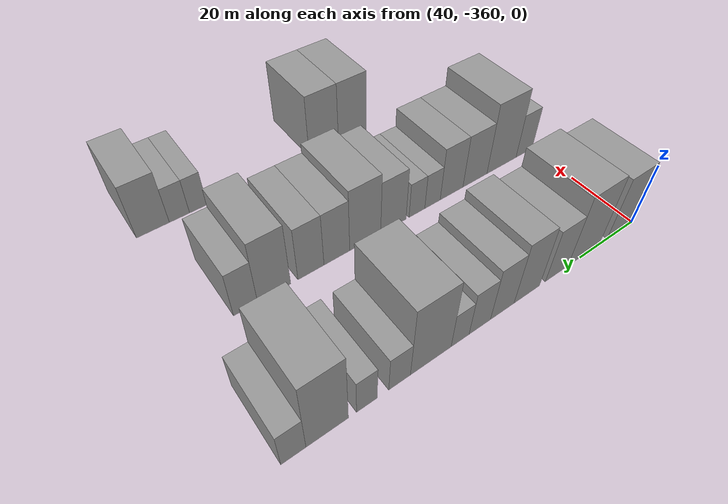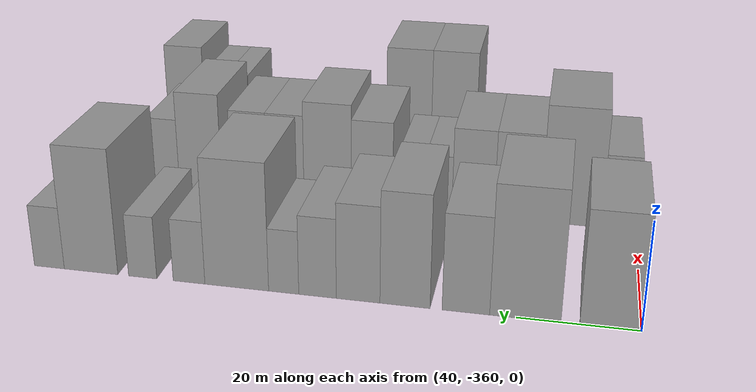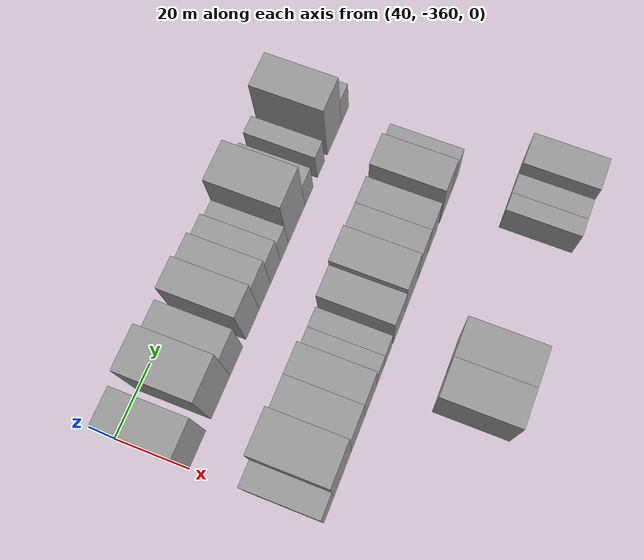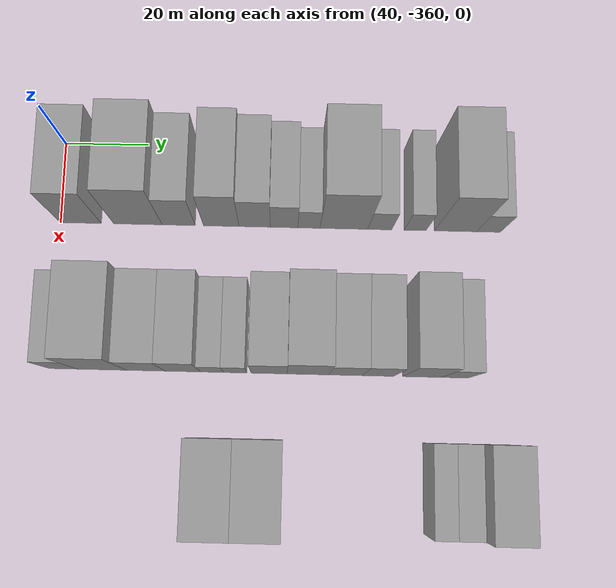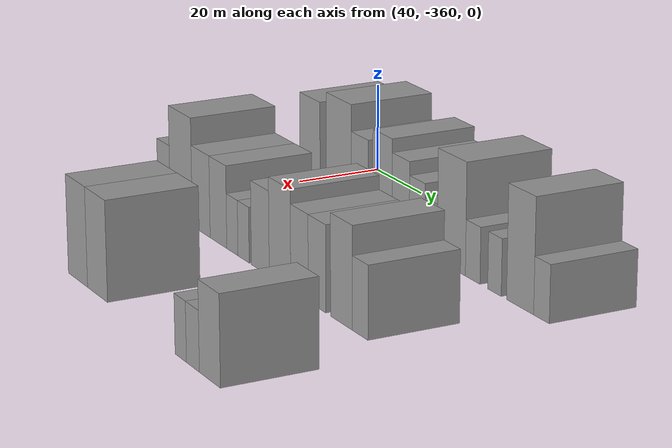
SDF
<sdf version="1.6">
 <world name="default">
  <model name="building_1">
   <static>1</static>
   <pose>50.0000 -355.1001 0 0.000000 0.000000 0.000000</pose>
   <link name="link">
    <pose>0 0 10.50 0 0 0</pose>
    <collision name="collision"><geometry><box><size>20.0000 9.7997 21.0000</size></box></geometry></collision>
    <visual name="visual">
     <cast_shadows>0</cast_shadows>
     <geometry><box><size>20.0000 9.7997 21.0000</size></box></geometry>
     <material>
      <script>
       <uri>model://grey_wall/materials/scripts</uri>
       <uri>model://grey_wall/materials/textures</uri>
       <name>vrc/grey_wall</name>
      </script>
     </material>
    </visual>
   </link>
  </model>
  <model name="building_2">
   <static>1</static>
   <pose>50.0000 -341.4045 0 0.000000 0.000000 0.000000</pose>
   <link name="link">
    <pose>0 0 12.00 0 0 0</pose>
    <collision name="collision"><geometry><box><size>20.0000 11.5914 24.0000</size></box></geometry></collision>
    <visual name="visual">
     <cast_shadows>0</cast_shadows>
     <geometry><box><size>20.0000 11.5914 24.0000</size></box></geometry>
     <material>
      <script>
       <uri>model://grey_wall/materials/scripts</uri>
       <uri>model://grey_wall/materials/textures</uri>
       <name>vrc/grey_wall</name>
      </script>
     </material>
    </visual>
   </link>
  </model>
  <model name="building_3">
   <static>1</static>
   <pose>50.0000 -331.6680 0 0.000000 0.000000 0.000000</pose>
   <link name="link">
    <pose>0 0 9.00 0 0 0</pose>
    <collision name="collision"><geometry><box><size>20.0000 7.8818 18.0000</size></box></geometry></collision>
    <visual name="visual">
     <cast_shadows>0</cast_shadows>
     <geometry><box><size>20.0000 7.8818 18.0000</size></box></geometry>
     <material>
      <script>
       <uri>model://grey_wall/materials/scripts</uri>
       <uri>model://grey_wall/materials/textures</uri>
       <name>vrc/grey_wall</name>
      </script>
     </material>
    </visual>
   </link>
  </model>
  <model name="building_4">
   <static>1</static>
   <pose>50.0000 -321.4947 0 0.000000 0.000000 0.000000</pose>
   <link name="link">
    <pose>0 0 10.50 0 0 0</pose>
    <collision name="collision"><geometry><box><size>20.0000 8.4648 21.0000</size></box></geometry></collision>
    <visual name="visual">
     <cast_shadows>0</cast_shadows>
     <geometry><box><size>20.0000 8.4648 21.0000</size></box></geometry>
     <material>
      <script>
       <uri>model://grey_wall/materials/scripts</uri>
       <uri>model://grey_wall/materials/textures</uri>
       <name>vrc/grey_wall</name>
      </script>
     </material>
    </visual>
   </link>
  </model>
  <model name="building_5">
   <static>1</static>
   <pose>50.0000 -313.5152 0 0.000000 0.000000 0.000000</pose>
   <link name="link">
    <pose>0 0 9.00 0 0 0</pose>
    <collision name="collision"><geometry><box><size>20.0000 7.4942 18.0000</size></box></geometry></collision>
    <visual name="visual">
     <cast_shadows>0</cast_shadows>
     <geometry><box><size>20.0000 7.4942 18.0000</size></box></geometry>
     <material>
      <script>
       <uri>model://grey_wall/materials/scripts</uri>
       <uri>model://grey_wall/materials/textures</uri>
       <name>vrc/grey_wall</name>
      </script>
     </material>
    </visual>
   </link>
  </model>
  <model name="building_6">
   <static>1</static>
   <pose>50.0000 -306.5093 0 0.000000 0.000000 0.000000</pose>
   <link name="link">
    <pose>0 0 7.50 0 0 0</pose>
    <collision name="collision"><geometry><box><size>20.0000 6.5176 15.0000</size></box></geometry></collision>
    <visual name="visual">
     <cast_shadows>0</cast_shadows>
     <geometry><box><size>20.0000 6.5176 15.0000</size></box></geometry>
     <material>
      <script>
       <uri>model://grey_wall/materials/scripts</uri>
       <uri>model://grey_wall/materials/textures</uri>
       <name>vrc/grey_wall</name>
      </script>
     </material>
    </visual>
   </link>
  </model>
  <model name="building_7">
   <static>1</static>
   <pose>50.0000 -300.6045 0 0.000000 0.000000 0.000000</pose>
   <link name="link">
    <pose>0 0 6.00 0 0 0</pose>
    <collision name="collision"><geometry><box><size>20.0000 5.2920 12.0000</size></box></geometry></collision>
    <visual name="visual">
     <cast_shadows>0</cast_shadows>
     <geometry><box><size>20.0000 5.2920 12.0000</size></box></geometry>
     <material>
      <script>
       <uri>model://grey_wall/materials/scripts</uri>
       <uri>model://grey_wall/materials/textures</uri>
       <name>vrc/grey_wall</name>
      </script>
     </material>
    </visual>
   </link>
  </model>
  <model name="building_8">
   <static>1</static>
   <pose>50.0000 -292.2646 0 0.000000 0.000000 0.000000</pose>
   <link name="link">
    <pose>0 0 12.00 0 0 0</pose>
    <collision name="collision"><geometry><box><size>20.0000 11.3878 24.0000</size></box></geometry></collision>
    <visual name="visual">
     <cast_shadows>0</cast_shadows>
     <geometry><box><size>20.0000 11.3878 24.0000</size></box></geometry>
     <material>
      <script>
       <uri>model://grey_wall/materials/scripts</uri>
       <uri>model://grey_wall/materials/textures</uri>
       <name>vrc/grey_wall</name>
      </script>
     </material>
    </visual>
   </link>
  </model>
  <model name="building_9">
   <static>1</static>
   <pose>50.0000 -283.6906 0 0.000000 0.000000 0.000000</pose>
   <link name="link">
    <pose>0 0 6.00 0 0 0</pose>
    <collision name="collision"><geometry><box><size>20.0000 5.7602 12.0000</size></box></geometry></collision>
    <visual name="visual">
     <cast_shadows>0</cast_shadows>
     <geometry><box><size>20.0000 5.7602 12.0000</size></box></geometry>
     <material>
      <script>
       <uri>model://grey_wall/materials/scripts</uri>
       <uri>model://grey_wall/materials/textures</uri>
       <name>vrc/grey_wall</name>
      </script>
     </material>
    </visual>
   </link>
  </model>
  <model name="building_10">
   <static>1</static>
   <pose>50.0000 -275.2085 0 0.000000 0.000000 0.000000</pose>
   <link name="link">
    <pose>0 0 6.00 0 0 0</pose>
    <collision name="collision"><geometry><box><size>20.0000 5.2040 12.0000</size></box></geometry></collision>
    <visual name="visual">
     <cast_shadows>0</cast_shadows>
     <geometry><box><size>20.0000 5.2040 12.0000</size></box></geometry>
     <material>
      <script>
       <uri>model://grey_wall/materials/scripts</uri>
       <uri>model://grey_wall/materials/textures</uri>
       <name>vrc/grey_wall</name>
      </script>
     </material>
    </visual>
   </link>
  </model>
  <model name="building_11">
   <static>1</static>
   <pose>50.0000 -265.5791 0 0.000000 0.000000 0.000000</pose>
   <link name="link">
    <pose>0 0 12.00 0 0 0</pose>
    <collision name="collision"><geometry><box><size>20.0000 10.0548 24.0000</size></box></geometry></collision>
    <visual name="visual">
     <cast_shadows>0</cast_shadows>
     <geometry><box><size>20.0000 10.0548 24.0000</size></box></geometry>
     <material>
      <script>
       <uri>model://grey_wall/materials/scripts</uri>
       <uri>model://grey_wall/materials/textures</uri>
       <name>vrc/grey_wall</name>
      </script>
     </material>
    </visual>
   </link>
  </model>
  <model name="building_12">
   <static>1</static>
   <pose>50.0000 -257.7121 0 0.000000 0.000000 0.000000</pose>
   <link name="link">
    <pose>0 0 6.00 0 0 0</pose>
    <collision name="collision"><geometry><box><size>20.0000 5.6793 12.0000</size></box></geometry></collision>
    <visual name="visual">
     <cast_shadows>0</cast_shadows>
     <geometry><box><size>20.0000 5.6793 12.0000</size></box></geometry>
     <material>
      <script>
       <uri>model://grey_wall/materials/scripts</uri>
       <uri>model://grey_wall/materials/textures</uri>
       <name>vrc/grey_wall</name>
      </script>
     </material>
    </visual>
   </link>
  </model>
  <model name="building_79">
   <static>1</static>
   <pose>85.0000 -356.7279 0 0.000000 0.000000 0.000000</pose>
   <link name="link">
    <pose>0 0 7.50 0 0 0</pose>
    <collision name="collision"><geometry><box><size>20.0000 6.5443 15.0000</size></box></geometry></collision>
    <visual name="visual">
     <cast_shadows>0</cast_shadows>
     <geometry><box><size>20.0000 6.5443 15.0000</size></box></geometry>
     <material>
      <script>
       <uri>model://grey_wall/materials/scripts</uri>
       <uri>model://grey_wall/materials/textures</uri>
       <name>vrc/grey_wall</name>
      </script>
     </material>
    </visual>
   </link>
  </model>
  <model name="building_80">
   <static>1</static>
   <pose>85.0000 -347.7599 0 0.000000 0.000000 0.000000</pose>
   <link name="link">
    <pose>0 0 12.00 0 0 0</pose>
    <collision name="collision"><geometry><box><size>20.0000 11.3915 24.0000</size></box></geometry></collision>
    <visual name="visual">
     <cast_shadows>0</cast_shadows>
     <geometry><box><size>20.0000 11.3915 24.0000</size></box></geometry>
     <material>
      <script>
       <uri>model://grey_wall/materials/scripts</uri>
       <uri>model://grey_wall/materials/textures</uri>
       <name>vrc/grey_wall</name>
      </script>
     </material>
    </visual>
   </link>
  </model>
  <model name="building_81">
   <static>1</static>
   <pose>85.0000 -337.5976 0 0.000000 0.000000 0.000000</pose>
   <link name="link">
    <pose>0 0 9.00 0 0 0</pose>
    <collision name="collision"><geometry><box><size>20.0000 8.9333 18.0000</size></box></geometry></collision>
    <visual name="visual">
     <cast_shadows>0</cast_shadows>
     <geometry><box><size>20.0000 8.9333 18.0000</size></box></geometry>
     <material>
      <script>
       <uri>model://grey_wall/materials/scripts</uri>
       <uri>model://grey_wall/materials/textures</uri>
       <name>vrc/grey_wall</name>
      </script>
     </material>
    </visual>
   </link>
  </model>
  <model name="building_82">
   <static>1</static>
   <pose>85.0000 -329.0489 0 0.000000 0.000000 0.000000</pose>
   <link name="link">
    <pose>0 0 9.00 0 0 0</pose>
    <collision name="collision"><geometry><box><size>20.0000 8.1641 18.0000</size></box></geometry></collision>
    <visual name="visual">
     <cast_shadows>0</cast_shadows>
     <geometry><box><size>20.0000 8.1641 18.0000</size></box></geometry>
     <material>
      <script>
       <uri>model://grey_wall/materials/scripts</uri>
       <uri>model://grey_wall/materials/textures</uri>
       <name>vrc/grey_wall</name>
      </script>
     </material>
    </visual>
   </link>
  </model>
  <model name="building_83">
   <static>1</static>
   <pose>85.0000 -322.2898 0 0.000000 0.000000 0.000000</pose>
   <link name="link">
    <pose>0 0 6.00 0 0 0</pose>
    <collision name="collision"><geometry><box><size>20.0000 5.3541 12.0000</size></box></geometry></collision>
    <visual name="visual">
     <cast_shadows>0</cast_shadows>
     <geometry><box><size>20.0000 5.3541 12.0000</size></box></geometry>
     <material>
      <script>
       <uri>model://grey_wall/materials/scripts</uri>
       <uri>model://grey_wall/materials/textures</uri>
       <name>vrc/grey_wall</name>
      </script>
     </material>
    </visual>
   </link>
  </model>
  <model name="building_84">
   <static>1</static>
   <pose>85.0000 -316.9596 0 0.000000 0.000000 0.000000</pose>
   <link name="link">
    <pose>0 0 6.00 0 0 0</pose>
    <collision name="collision"><geometry><box><size>20.0000 5.3062 12.0000</size></box></geometry></collision>
    <visual name="visual">
     <cast_shadows>0</cast_shadows>
     <geometry><box><size>20.0000 5.3062 12.0000</size></box></geometry>
     <material>
      <script>
       <uri>model://grey_wall/materials/scripts</uri>
       <uri>model://grey_wall/materials/textures</uri>
       <name>vrc/grey_wall</name>
      </script>
     </material>
    </visual>
   </link>
  </model>
  <model name="building_85">
   <static>1</static>
   <pose>85.0000 -309.1875 0 0.000000 0.000000 0.000000</pose>
   <link name="link">
    <pose>0 0 9.00 0 0 0</pose>
    <collision name="collision"><geometry><box><size>20.0000 8.2381 18.0000</size></box></geometry></collision>
    <visual name="visual">
     <cast_shadows>0</cast_shadows>
     <geometry><box><size>20.0000 8.2381 18.0000</size></box></geometry>
     <material>
      <script>
       <uri>model://grey_wall/materials/scripts</uri>
       <uri>model://grey_wall/materials/textures</uri>
       <name>vrc/grey_wall</name>
      </script>
     </material>
    </visual>
   </link>
  </model>
  <model name="building_86">
   <static>1</static>
   <pose>85.0000 -300.2663 0 0.000000 0.000000 0.000000</pose>
   <link name="link">
    <pose>0 0 10.50 0 0 0</pose>
    <collision name="collision"><geometry><box><size>20.0000 9.6042 21.0000</size></box></geometry></collision>
    <visual name="visual">
     <cast_shadows>0</cast_shadows>
     <geometry><box><size>20.0000 9.6042 21.0000</size></box></geometry>
     <material>
      <script>
       <uri>model://grey_wall/materials/scripts</uri>
       <uri>model://grey_wall/materials/textures</uri>
       <name>vrc/grey_wall</name>
      </script>
     </material>
    </visual>
   </link>
  </model>
  <model name="building_87">
   <static>1</static>
   <pose>85.0000 -291.6504 0 0.000000 0.000000 0.000000</pose>
   <link name="link">
    <pose>0 0 9.00 0 0 0</pose>
    <collision name="collision"><geometry><box><size>20.0000 7.6277 18.0000</size></box></geometry></collision>
    <visual name="visual">
     <cast_shadows>0</cast_shadows>
     <geometry><box><size>20.0000 7.6277 18.0000</size></box></geometry>
     <material>
      <script>
       <uri>model://grey_wall/materials/scripts</uri>
       <uri>model://grey_wall/materials/textures</uri>
       <name>vrc/grey_wall</name>
      </script>
     </material>
    </visual>
   </link>
  </model>
  <model name="building_88">
   <static>1</static>
   <pose>85.0000 -284.1190 0 0.000000 0.000000 0.000000</pose>
   <link name="link">
    <pose>0 0 9.00 0 0 0</pose>
    <collision name="collision"><geometry><box><size>20.0000 7.4351 18.0000</size></box></geometry></collision>
    <visual name="visual">
     <cast_shadows>0</cast_shadows>
     <geometry><box><size>20.0000 7.4351 18.0000</size></box></geometry>
     <material>
      <script>
       <uri>model://grey_wall/materials/scripts</uri>
       <uri>model://grey_wall/materials/textures</uri>
       <name>vrc/grey_wall</name>
      </script>
     </material>
    </visual>
   </link>
  </model>
  <model name="building_89">
   <static>1</static>
   <pose>85.0000 -273.9315 0 0.000000 0.000000 0.000000</pose>
   <link name="link">
    <pose>0 0 10.50 0 0 0</pose>
    <collision name="collision"><geometry><box><size>20.0000 8.9399 21.0000</size></box></geometry></collision>
    <visual name="visual">
     <cast_shadows>0</cast_shadows>
     <geometry><box><size>20.0000 8.9399 21.0000</size></box></geometry>
     <material>
      <script>
       <uri>model://grey_wall/materials/scripts</uri>
       <uri>model://grey_wall/materials/textures</uri>
       <name>vrc/grey_wall</name>
      </script>
     </material>
    </visual>
   </link>
  </model>
  <model name="building_90">
   <static>1</static>
   <pose>85.0000 -266.3416 0 0.000000 0.000000 0.000000</pose>
   <link name="link">
    <pose>0 0 7.50 0 0 0</pose>
    <collision name="collision"><geometry><box><size>20.0000 6.2399 15.0000</size></box></geometry></collision>
    <visual name="visual">
     <cast_shadows>0</cast_shadows>
     <geometry><box><size>20.0000 6.2399 15.0000</size></box></geometry>
     <material>
      <script>
       <uri>model://grey_wall/materials/scripts</uri>
       <uri>model://grey_wall/materials/textures</uri>
       <name>vrc/grey_wall</name>
      </script>
     </material>
    </visual>
   </link>
  </model>
  <model name="building_157">
   <static>1</static>
   <pose>120.0000 -320.9892 0 0.000000 0.000000 0.000000</pose>
   <link name="link">
    <pose>0 0 10.50 0 0 0</pose>
    <collision name="collision"><geometry><box><size>20.0000 10.0072 21.0000</size></box></geometry></collision>
    <visual name="visual">
     <cast_shadows>0</cast_shadows>
     <geometry><box><size>20.0000 10.0072 21.0000</size></box></geometry>
     <material>
      <script>
       <uri>model://grey_wall/materials/scripts</uri>
       <uri>model://grey_wall/materials/textures</uri>
       <name>vrc/grey_wall</name>
      </script>
     </material>
    </visual>
   </link>
  </model>
  <model name="building_158">
   <static>1</static>
   <pose>120.0000 -310.9097 0 0.000000 0.000000 0.000000</pose>
   <link name="link">
    <pose>0 0 10.50 0 0 0</pose>
    <collision name="collision"><geometry><box><size>20.0000 10.1517 21.0000</size></box></geometry></collision>
    <visual name="visual">
     <cast_shadows>0</cast_shadows>
     <geometry><box><size>20.0000 10.1517 21.0000</size></box></geometry>
     <material>
      <script>
       <uri>model://grey_wall/materials/scripts</uri>
       <uri>model://grey_wall/materials/textures</uri>
       <name>vrc/grey_wall</name>
      </script>
     </material>
    </visual>
   </link>
  </model>
  <model name="building_159">
   <static>1</static>
   <pose>120.0000 -271.2828 0 0.000000 0.000000 0.000000</pose>
   <link name="link">
    <pose>0 0 6.00 0 0 0</pose>
    <collision name="collision"><geometry><box><size>20.0000 5.0341 12.0000</size></box></geometry></collision>
    <visual name="visual">
     <cast_shadows>0</cast_shadows>
     <geometry><box><size>20.0000 5.0341 12.0000</size></box></geometry>
     <material>
      <script>
       <uri>model://grey_wall/materials/scripts</uri>
       <uri>model://grey_wall/materials/textures</uri>
       <name>vrc/grey_wall</name>
      </script>
     </material>
    </visual>
   </link>
  </model>
  <model name="building_160">
   <static>1</static>
   <pose>120.0000 -265.9365 0 0.000000 0.000000 0.000000</pose>
   <link name="link">
    <pose>0 0 6.00 0 0 0</pose>
    <collision name="collision"><geometry><box><size>20.0000 5.6585 12.0000</size></box></geometry></collision>
    <visual name="visual">
     <cast_shadows>0</cast_shadows>
     <geometry><box><size>20.0000 5.6585 12.0000</size></box></geometry>
     <material>
      <script>
       <uri>model://grey_wall/materials/scripts</uri>
       <uri>model://grey_wall/materials/textures</uri>
       <name>vrc/grey_wall</name>
      </script>
     </material>
    </visual>
   </link>
  </model>
  <model name="building_161">
   <static>1</static>
   <pose>120.0000 -258.6471 0 0.000000 0.000000 0.000000</pose>
   <link name="link">
    <pose>0 0 9.00 0 0 0</pose>
    <collision name="collision"><geometry><box><size>20.0000 8.9204 18.0000</size></box></geometry></collision>
    <visual name="visual">
     <cast_shadows>0</cast_shadows>
     <geometry><box><size>20.0000 8.9204 18.0000</size></box></geometry>
     <material>
      <script>
       <uri>model://grey_wall/materials/scripts</uri>
       <uri>model://grey_wall/materials/textures</uri>
       <name>vrc/grey_wall</name>
      </script>
     </material>
    </visual>
   </link>
  </model>
 </world>
</sdf>
